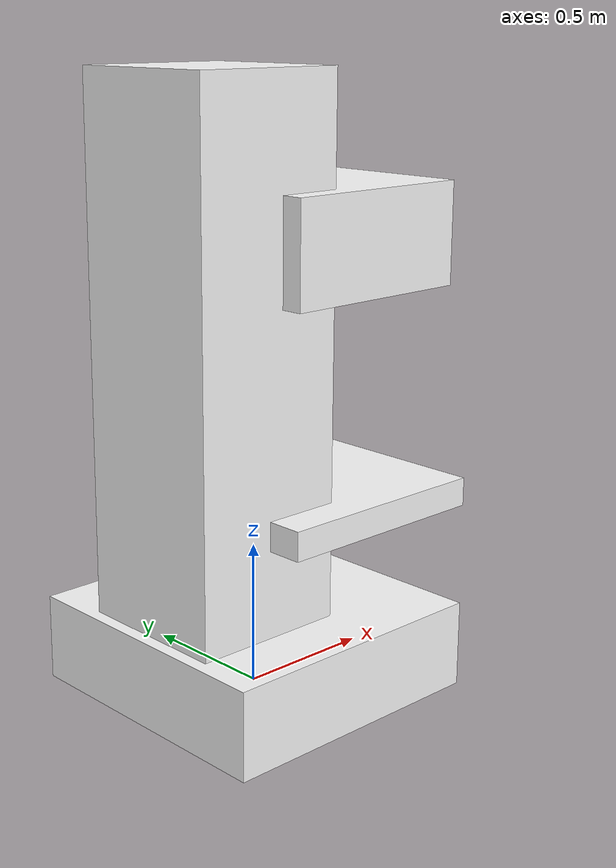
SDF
<?xml version="1.0"?>
<sdf version="1.10">
  <model name="machine_press">
    <static>true</static>
      <link name="body">
        <collision name="base_col"><pose>0 0 0.15 0 0 0</pose>
          <geometry><box><size>1.00 1.00 0.30</size></box></geometry></collision>
        <visual name="base_vis"><pose>0 0 0.15 0 0 0</pose>
          <geometry><box><size>1.00 1.00 0.30</size></box></geometry>
          <material>
          <diffuse>1 1 1 1</diffuse>
          <specular>0.15 0.15 0.15 1</specular>
          <pbr><metal>
            <albedo_map>model://slam_assets/materials/textures/metal_panel.png</albedo_map>
            <roughness>0.85</roughness><metalness>0.0</metalness>
          </metal></pbr>
        </material>
        </visual>
        <collision name="column_col"><pose>-0.18 0 1.20 0 0 0</pose>
          <geometry><box><size>0.55 0.55 1.80</size></box></geometry></collision>
        <visual name="column_vis"><pose>-0.18 0 1.20 0 0 0</pose>
          <geometry><box><size>0.55 0.55 1.80</size></box></geometry>
          <material>
          <diffuse>1 1 1 1</diffuse>
          <specular>0.15 0.15 0.15 1</specular>
          <pbr><metal>
            <albedo_map>model://slam_assets/materials/textures/machine_skin_b.png</albedo_map>
            <roughness>0.85</roughness><metalness>0.0</metalness>
          </metal></pbr>
        </material>
        </visual>
        <collision name="ram_col"><pose>0.22 0 1.55 0 0 0</pose>
          <geometry><box><size>0.70 0.70 0.35</size></box></geometry></collision>
        <visual name="ram_vis"><pose>0.22 0 1.55 0 0 0</pose>
          <geometry><box><size>0.70 0.70 0.35</size></box></geometry>
          <material>
          <diffuse>1 1 1 1</diffuse>
          <specular>0.15 0.15 0.15 1</specular>
          <pbr><metal>
            <albedo_map>model://slam_assets/materials/textures/metal_brushed.png</albedo_map>
            <roughness>0.85</roughness><metalness>0.0</metalness>
          </metal></pbr>
        </material>
        </visual>
        <collision name="table_col"><pose>0.22 0 0.65 0 0 0</pose>
          <geometry><box><size>0.80 0.80 0.10</size></box></geometry></collision>
        <visual name="table_vis"><pose>0.22 0 0.65 0 0 0</pose>
          <geometry><box><size>0.80 0.80 0.10</size></box></geometry>
          <material>
          <diffuse>1 1 1 1</diffuse>
          <specular>0.15 0.15 0.15 1</specular>
          <pbr><metal>
            <albedo_map>model://slam_assets/materials/textures/metal_panel.png</albedo_map>
            <roughness>0.85</roughness><metalness>0.0</metalness>
          </metal></pbr>
        </material>
        </visual>
      </link>
  </model>
</sdf>
